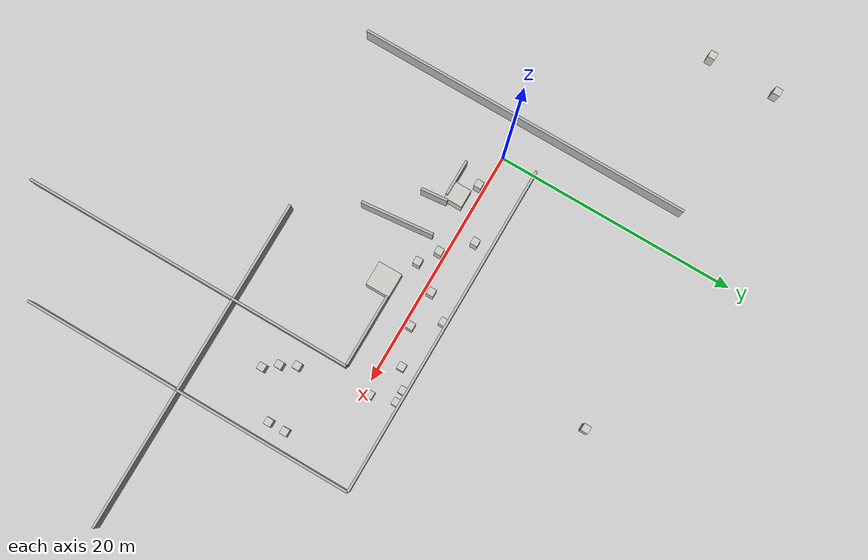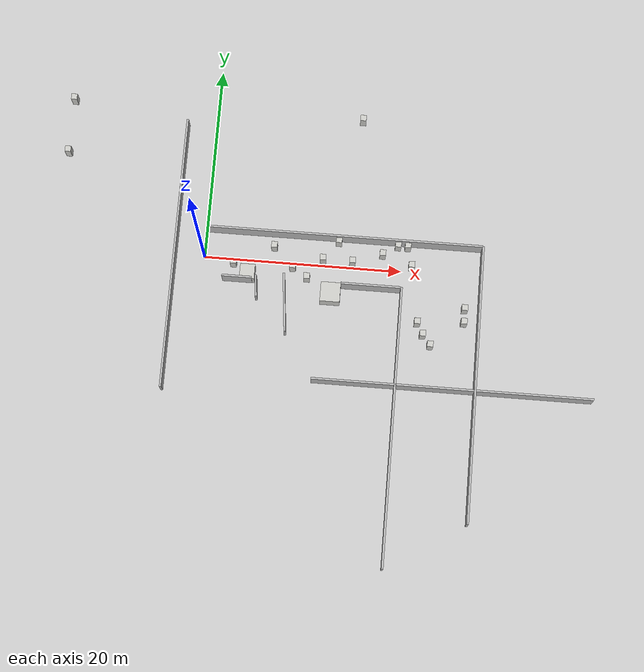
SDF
<sdf version="1.7">
 <world name="default">
  <light name="sun" type="directional">
   <pose>0 0 10 0 -0 0</pose>
   <diffuse>0.8 0.8 0.8 1</diffuse>
   <specular>0.2 0.2 0.2 1</specular>
   <attenuation>
    <range>1000</range>
    <constant>0.9</constant>
    <linear>0.01</linear>
    <quadratic>0.001</quadratic>
   </attenuation>
   <direction>-0.5 0.1 -0.9</direction>
   <spot><inner_angle>0</inner_angle><outer_angle>0</outer_angle><falloff>0</falloff></spot>
  </light>
  <model name="ground_plane">
   <static>1</static>
   <link name="link">
    <collision name="collision">
     <geometry><plane><normal>0 0 1</normal><size>100 100</size></plane></geometry>
     <surface>
      <contact><collide_bitmask>65535</collide_bitmask></contact>
      <friction><ode><mu>100</mu><mu2>50</mu2></ode></friction>
     </surface>
    </collision>
    <visual name="visual">
     <cast_shadows>0</cast_shadows>
     <geometry><plane><normal>0 0 1</normal><size>100 100</size></plane></geometry>
     <material>
      <script><uri>file://media/materials/scripts/gazebo.material</uri><name>Gazebo/Grey</name></script>
     </material>
    </visual>
   </link>
  </model>
  <gravity>0 0 -9.8</gravity>
  <magnetic_field>6e-06 2.3e-05 -4.2e-05</magnetic_field>
  <atmosphere type="adiabatic"/>
  <physics type="ode">
   <max_step_size>0.001</max_step_size>
   <real_time_factor>1</real_time_factor>
   <real_time_update_rate>1000</real_time_update_rate>
  </physics>
  <scene><ambient>0.4 0.4 0.4 1</ambient><background>0.7 0.7 0.7 1</background><shadows>1</shadows></scene>
  <spherical_coordinates>
   <surface_model>EARTH_WGS84</surface_model>
   <latitude_deg>0</latitude_deg>
   <longitude_deg>0</longitude_deg>
   <elevation>0</elevation>
   <heading_deg>0</heading_deg>
  </spherical_coordinates>
  <model name="left_wall">
   <static>1</static>
   <pose>14 2.8 1 0 -0 0</pose>
   <link name="link">
    <collision name="collision"><geometry><box><size>28 0.2 2</size></box></geometry></collision>
    <visual name="visual"><geometry><box><size>28 0.2 2</size></box></geometry></visual>
   </link>
  </model>
  <model name="right_wall_1">
   <static>1</static>
   <pose>3.5 -2.2 1 0 -0 0</pose>
   <link name="link">
    <collision name="collision"><geometry><box><size>3 0.2 2</size></box></geometry></collision>
    <visual name="visual"><geometry><box><size>3 0.2 2</size></box></geometry></visual>
   </link>
  </model>
  <model name="right_wall_2">
   <static>1</static>
   <pose>5.5 -3 1 0 -0 0.1</pose>
   <link name="link">
    <collision name="collision"><geometry><box><size>0.2 2.2 2</size></box></geometry></collision>
    <visual name="visual"><geometry><box><size>0.2 2.2 2</size></box></geometry></visual>
   </link>
  </model>
  <model name="right_wall_3">
   <static>1</static>
   <pose>8.5 -4.5 1 0 -0 0.1</pose>
   <link name="link">
    <collision name="collision"><geometry><box><size>0.2 6 2</size></box></geometry></collision>
    <visual name="visual"><geometry><box><size>0.2 6 2</size></box></geometry></visual>
   </link>
  </model>
  <model name="right_wall_4">
   <static>1</static>
   <pose>17 -2.1 1 0 -0 0</pose>
   <link name="link">
    <collision name="collision"><geometry><box><size>6 0.2 2</size></box></geometry></collision>
    <visual name="visual"><geometry><box><size>6 0.2 2</size></box></geometry></visual>
   </link>
  </model>
  <model name="back_wall">
   <static>1</static>
   <pose>-3 0 1 0 -0 0</pose>
   <link name="link">
    <collision name="collision"><geometry><box><size>0.2 28 2</size></box></geometry></collision>
    <visual name="visual"><geometry><box><size>0.2 28 2</size></box></geometry></visual>
   </link>
  </model>
  <model name="box_1_1_2">
   <pose>3.85 0.94 0 0 -0 0</pose>
   <link name="Wall_0">
    <collision name="Wall_0_Collision">
     <geometry><box><size>0.6 0.6 1.6</size></box></geometry>
     <pose>0 0 0.8 0 -0 0</pose>
    </collision>
    <visual name="Wall_0_Visual">
     <pose>0 0 0.8 0 -0 0</pose>
     <geometry><box><size>0.6 0.6 1.6</size></box></geometry>
     <material>
      <script><uri>file://media/materials/scripts/gazebo.material</uri><name>Gazebo/CeilingTiled</name></script>
      <ambient>0.921569 0.807843 0.615686 1</ambient>
     </material>
     <meta><layer>0</layer></meta>
    </visual>
    <pose>-0.85 -1.44 0 0 -0 0</pose>
   </link>
   <static>1</static>
  </model>
  <model name="box_1_1_2_1">
   <pose>7.85 2.94 0 0 -0 0</pose>
   <link name="Wall_0">
    <collision name="Wall_0_Collision">
     <geometry><box><size>0.6 0.6 1.6</size></box></geometry>
     <pose>0 0 0.8 0 -0 0</pose>
    </collision>
    <visual name="Wall_0_Visual">
     <pose>0 0 0.8 0 -0 0</pose>
     <geometry><box><size>0.6 0.6 1.6</size></box></geometry>
     <material>
      <script><uri>file://media/materials/scripts/gazebo.material</uri><name>Gazebo/CeilingTiled</name></script>
      <ambient>0.921569 0.807843 0.615686 1</ambient>
     </material>
     <meta><layer>0</layer></meta>
    </visual>
    <pose>-0.85 -1.44 0 0 -0 0</pose>
   </link>
   <static>1</static>
  </model>
  <model name="box_1_1_2_2">
   <pose>9.85 0.94 0 0 -0 0</pose>
   <link name="Wall_0">
    <collision name="Wall_0_Collision">
     <geometry><box><size>0.6 0.6 1.6</size></box></geometry>
     <pose>0 0 0.8 0 -0 0</pose>
    </collision>
    <visual name="Wall_0_Visual">
     <pose>0 0 0.8 0 -0 0</pose>
     <geometry><box><size>0.6 0.6 1.6</size></box></geometry>
     <material>
      <script><uri>file://media/materials/scripts/gazebo.material</uri><name>Gazebo/CeilingTiled</name></script>
      <ambient>0.921569 0.807843 0.615686 1</ambient>
     </material>
     <meta><layer>0</layer></meta>
    </visual>
    <pose>-0.85 -1.44 0 0 -0 0</pose>
   </link>
   <static>1</static>
  </model>
  <model name="box_1_1_2_3">
   <pose>12.85 2 0 0 -0 0</pose>
   <link name="Wall_0">
    <collision name="Wall_0_Collision">
     <geometry><box><size>0.6 0.6 1.6</size></box></geometry>
     <pose>0 0 0.8 0 -0 0</pose>
    </collision>
    <visual name="Wall_0_Visual">
     <pose>0 0 0.8 0 -0 0</pose>
     <geometry><box><size>0.6 0.6 1.6</size></box></geometry>
     <material>
      <script><uri>file://media/materials/scripts/gazebo.material</uri><name>Gazebo/CeilingTiled</name></script>
      <ambient>0.921569 0.807843 0.615686 1</ambient>
     </material>
     <meta><layer>0</layer></meta>
    </visual>
    <pose>-0.85 -1.44 0 0 -0 0</pose>
   </link>
   <static>1</static>
  </model>
  <model name="box_1_1_2_4">
   <pose>15.85 1.94 0 0 -0 0</pose>
   <link name="Wall_0">
    <collision name="Wall_0_Collision">
     <geometry><box><size>0.6 0.6 1.6</size></box></geometry>
     <pose>0 0 0.8 0 -0 0</pose>
    </collision>
    <visual name="Wall_0_Visual">
     <pose>0 0 0.8 0 -0 0</pose>
     <geometry><box><size>0.6 0.6 1.6</size></box></geometry>
     <material>
      <script><uri>file://media/materials/scripts/gazebo.material</uri><name>Gazebo/CeilingTiled</name></script>
      <ambient>0.921569 0.807843 0.615686 1</ambient>
     </material>
     <meta><layer>0</layer></meta>
    </visual>
    <pose>-0.85 -1.44 0 0 -0 0</pose>
   </link>
   <static>1</static>
  </model>
  <model name="box_1_1_2_5">
   <pose>18.85 2.94 0 0 -0 0</pose>
   <link name="Wall_0">
    <collision name="Wall_0_Collision">
     <geometry><box><size>0.6 0.6 1.6</size></box></geometry>
     <pose>0 0 0.8 0 -0 0</pose>
    </collision>
    <visual name="Wall_0_Visual">
     <pose>0 0 0.8 0 -0 0</pose>
     <geometry><box><size>0.6 0.6 1.6</size></box></geometry>
     <material>
      <script><uri>file://media/materials/scripts/gazebo.material</uri><name>Gazebo/CeilingTiled</name></script>
      <ambient>0.921569 0.807843 0.615686 1</ambient>
     </material>
     <meta><layer>0</layer></meta>
    </visual>
    <pose>-0.85 -1.44 0 0 -0 0</pose>
   </link>
   <static>1</static>
  </model>
  <model name="box_1_1_2_6">
   <pose>21.85 1.94 0 0 -0 0</pose>
   <link name="Wall_0">
    <collision name="Wall_0_Collision">
     <geometry><box><size>0.6 0.6 1.6</size></box></geometry>
     <pose>0 0 0.8 0 -0 0</pose>
    </collision>
    <visual name="Wall_0_Visual">
     <pose>0 0 0.8 0 -0 0</pose>
     <geometry><box><size>0.6 0.6 1.6</size></box></geometry>
     <material>
      <script><uri>file://media/materials/scripts/gazebo.material</uri><name>Gazebo/CeilingTiled</name></script>
      <ambient>0.921569 0.807843 0.615686 1</ambient>
     </material>
     <meta><layer>0</layer></meta>
    </visual>
    <pose>-0.85 -1.44 0 0 -0 0</pose>
   </link>
   <static>1</static>
  </model>
  <model name="box_1_1_2_7">
   <pose>13.85 -1.56 0 0 -0 0</pose>
   <link name="Wall_0">
    <collision name="Wall_0_Collision">
     <geometry><box><size>2 2 1.6</size></box></geometry>
     <pose>0 0 0.8 0 -0 0</pose>
    </collision>
    <visual name="Wall_0_Visual">
     <pose>0 0 0.8 0 -0 0</pose>
     <geometry><box><size>2 2 1.6</size></box></geometry>
     <material>
      <script><uri>file://media/materials/scripts/gazebo.material</uri><name>Gazebo/CeilingTiled</name></script>
      <ambient>0.921569 0.807843 0.615686 1</ambient>
     </material>
     <meta><layer>0</layer></meta>
    </visual>
    <pose>-0.85 -1.44 0 0 -0 0</pose>
   </link>
   <static>1</static>
  </model>
  <model name="box_1_1_2_8">
   <pose>14.35 3.94 0 0 -0 0</pose>
   <link name="Wall_0">
    <collision name="Wall_0_Collision">
     <geometry><box><size>0.6 0.6 1.6</size></box></geometry>
     <pose>0 0 0.8 0 -0 0</pose>
    </collision>
    <visual name="Wall_0_Visual">
     <pose>0 0 0.8 0 -0 0</pose>
     <geometry><box><size>0.6 0.6 1.6</size></box></geometry>
     <material>
      <script><uri>file://media/materials/scripts/gazebo.material</uri><name>Gazebo/CeilingTiled</name></script>
      <ambient>0.921569 0.807843 0.615686 1</ambient>
     </material>
     <meta><layer>0</layer></meta>
    </visual>
    <pose>-0.85 -1.44 0 0 -0 0</pose>
   </link>
   <static>1</static>
  </model>
  <model name="box_1_1_2_9">
   <pose>20.35 3.94 0 0 -0 0</pose>
   <link name="Wall_0">
    <collision name="Wall_0_Collision">
     <geometry><box><size>0.6 0.6 1.6</size></box></geometry>
     <pose>0 0 0.8 0 -0 0</pose>
    </collision>
    <visual name="Wall_0_Visual">
     <pose>0 0 0.8 0 -0 0</pose>
     <geometry><box><size>0.6 0.6 1.6</size></box></geometry>
     <material>
      <script><uri>file://media/materials/scripts/gazebo.material</uri><name>Gazebo/CeilingTiled</name></script>
      <ambient>0.921569 0.807843 0.615686 1</ambient>
     </material>
     <meta><layer>0</layer></meta>
    </visual>
    <pose>-0.85 -1.44 0 0 -0 0</pose>
   </link>
   <static>1</static>
  </model>
  <model name="box_1_1_2_10">
   <pose>21.35 3.94 0 0 -0 0</pose>
   <link name="Wall_0">
    <collision name="Wall_0_Collision">
     <geometry><box><size>0.6 0.6 1.6</size></box></geometry>
     <pose>0 0 0.8 0 -0 0</pose>
    </collision>
    <visual name="Wall_0_Visual">
     <pose>0 0 0.8 0 -0 0</pose>
     <geometry><box><size>0.6 0.6 1.6</size></box></geometry>
     <material>
      <script><uri>file://media/materials/scripts/gazebo.material</uri><name>Gazebo/CeilingTiled</name></script>
      <ambient>0.921569 0.807843 0.615686 1</ambient>
     </material>
     <meta><layer>0</layer></meta>
    </visual>
    <pose>-0.85 -1.44 0 0 -0 0</pose>
   </link>
   <static>1</static>
  </model>
  <model name="box_1_1_2_11">
   <pose>5.35 -0.06 0 0 -0 0</pose>
   <link name="Wall_0">
    <collision name="Wall_0_Collision">
     <geometry><box><size>1.5 1.5 1.6</size></box></geometry>
     <pose>0 0 0.8 0 -0 0</pose>
    </collision>
    <visual name="Wall_0_Visual">
     <pose>0 0 0.8 0 -0 0</pose>
     <geometry><box><size>1.5 1.5 1.6</size></box></geometry>
     <material>
      <script><uri>file://media/materials/scripts/gazebo.material</uri><name>Gazebo/CeilingTiled</name></script>
      <ambient>0.921569 0.807843 0.615686 1</ambient>
     </material>
     <meta><layer>0</layer></meta>
    </visual>
    <pose>-0.85 -1.44 0 0 -0 0</pose>
   </link>
   <static>1</static>
  </model>
  <model name="box_1_1_2_12">
   <pose>11.35 -0.06 0 0 -0 0</pose>
   <link name="Wall_0">
    <collision name="Wall_0_Collision">
     <geometry><box><size>0.6 0.6 1.6</size></box></geometry>
     <pose>0 0 0.8 0 -0 0</pose>
    </collision>
    <visual name="Wall_0_Visual">
     <pose>0 0 0.8 0 -0 0</pose>
     <geometry><box><size>0.6 0.6 1.6</size></box></geometry>
     <material>
      <script><uri>file://media/materials/scripts/gazebo.material</uri><name>Gazebo/CeilingTiled</name></script>
      <ambient>0.921569 0.807843 0.615686 1</ambient>
     </material>
     <meta><layer>0</layer></meta>
    </visual>
    <pose>-0.85 -1.44 0 0 -0 0</pose>
   </link>
   <static>1</static>
  </model>
  <model name="box_1_1_2_13">
   <pose>-14.15 11.44 0 0 -0 0</pose>
   <link name="Wall_0">
    <collision name="Wall_0_Collision">
     <geometry><box><size>0.6 0.6 1.6</size></box></geometry>
     <pose>0 0 0.8 0 -0 0</pose>
    </collision>
    <visual name="Wall_0_Visual">
     <pose>0 0 0.8 0 -0 0</pose>
     <geometry><box><size>0.6 0.6 1.6</size></box></geometry>
     <material>
      <script><uri>file://media/materials/scripts/gazebo.material</uri><name>Gazebo/CeilingTiled</name></script>
      <ambient>0.921569 0.807843 0.615686 1</ambient>
     </material>
     <meta><layer>0</layer></meta>
    </visual>
    <pose>-0.85 -1.44 0 0 -0 0</pose>
   </link>
   <static>1</static>
  </model>
  <model name="box_1_1_2_14">
   <pose>-14.15 17.14 0 0 -0 0</pose>
   <link name="Wall_0">
    <collision name="Wall_0_Collision">
     <geometry><box><size>0.6 0.6 1.6</size></box></geometry>
     <pose>0 0 0.8 0 -0 0</pose>
    </collision>
    <visual name="Wall_0_Visual">
     <pose>0 0 0.8 0 -0 0</pose>
     <geometry><box><size>0.6 0.6 1.6</size></box></geometry>
     <material>
      <script><uri>file://media/materials/scripts/gazebo.material</uri><name>Gazebo/CeilingTiled</name></script>
      <ambient>0.921569 0.807843 0.615686 1</ambient>
     </material>
     <meta><layer>0</layer></meta>
    </visual>
    <pose>-0.85 -1.44 0 0 -0 0</pose>
   </link>
   <static>1</static>
  </model>
  <model name="box_1_1_2_15">
   <pose>15.85 17.14 0 0 -0 0</pose>
   <link name="Wall_0">
    <collision name="Wall_0_Collision">
     <geometry><box><size>0.6 0.6 1.6</size></box></geometry>
     <pose>0 0 0.8 0 -0 0</pose>
    </collision>
    <visual name="Wall_0_Visual">
     <pose>0 0 0.8 0 -0 0</pose>
     <geometry><box><size>0.6 0.6 1.6</size></box></geometry>
     <material>
      <script><uri>file://media/materials/scripts/gazebo.material</uri><name>Gazebo/CeilingTiled</name></script>
      <ambient>0.921569 0.807843 0.615686 1</ambient>
     </material>
     <meta><layer>0</layer></meta>
    </visual>
    <pose>-0.85 -1.44 0 0 -0 0</pose>
   </link>
   <static>1</static>
  </model>
  <model name="back_wall_clone">
   <static>1</static>
   <pose>20.109 -16.0858 1 0 -0 0</pose>
   <link name="link">
    <collision name="collision"><geometry><box><size>0.2 28 2</size></box></geometry></collision>
    <visual name="visual"><geometry><box><size>0.2 28 2</size></box></geometry></visual>
   </link>
  </model>
  <model name="back_wall_clone_0">
   <static>1</static>
   <pose>28.0545 -11.1975 1 0 -0 0</pose>
   <link name="link">
    <collision name="collision"><geometry><box><size>0.2 28 2</size></box></geometry></collision>
    <visual name="visual"><geometry><box><size>0.2 28 2</size></box></geometry></visual>
   </link>
  </model>
  <model name="back_wall_clone_1_clone">
   <static>1</static>
   <pose>25.7647 -12 1 0 -0 1.5717</pose>
   <link name="link">
    <collision name="collision"><geometry><box><size>0.2 28 2</size></box></geometry></collision>
    <visual name="visual"><geometry><box><size>0.2 28 2</size></box></geometry></visual>
   </link>
  </model>
  <model name="box_1_1_2_3_clone">
   <pose>22.7754 -3.84178 0 0 -0 0</pose>
   <link name="Wall_0">
    <collision name="Wall_0_Collision">
     <geometry><box><size>0.6 0.6 1.6</size></box></geometry>
     <pose>0 0 0.8 0 -0 0</pose>
    </collision>
    <visual name="Wall_0_Visual">
     <pose>0 0 0.8 0 -0 0</pose>
     <geometry><box><size>0.6 0.6 1.6</size></box></geometry>
     <material>
      <script><uri>file://media/materials/scripts/gazebo.material</uri><name>Gazebo/CeilingTiled</name></script>
      <ambient>0.921569 0.807843 0.615686 1</ambient>
     </material>
     <meta><layer>0</layer></meta>
    </visual>
    <pose>-0.85 -1.44 0 0 -0 0</pose>
   </link>
   <static>1</static>
  </model>
  <model name="box_1_1_2_3_clone_0">
   <pose>24.1967 -6.09327 0 0 -0 0</pose>
   <link name="Wall_0">
    <collision name="Wall_0_Collision">
     <geometry><box><size>0.6 0.6 1.6</size></box></geometry>
     <pose>0 0 0.8 0 -0 0</pose>
    </collision>
    <visual name="Wall_0_Visual">
     <pose>0 0 0.8 0 -0 0</pose>
     <geometry><box><size>0.6 0.6 1.6</size></box></geometry>
     <material>
      <script><uri>file://media/materials/scripts/gazebo.material</uri><name>Gazebo/CeilingTiled</name></script>
      <ambient>0.921569 0.807843 0.615686 1</ambient>
     </material>
     <meta><layer>0</layer></meta>
    </visual>
    <pose>-0.85 -1.44 0 0 -0 0</pose>
   </link>
   <static>1</static>
  </model>
  <model name="box_1_1_2_3_clone_1">
   <pose>27.4414 -2.11339 0 0 -0 0</pose>
   <link name="Wall_0">
    <collision name="Wall_0_Collision">
     <geometry><box><size>0.6 0.6 1.6</size></box></geometry>
     <pose>0 0 0.8 0 -0 0</pose>
    </collision>
    <visual name="Wall_0_Visual">
     <pose>0 0 0.8 0 -0 0</pose>
     <geometry><box><size>0.6 0.6 1.6</size></box></geometry>
     <material>
      <script><uri>file://media/materials/scripts/gazebo.material</uri><name>Gazebo/CeilingTiled</name></script>
      <ambient>0.921569 0.807843 0.615686 1</ambient>
     </material>
     <meta><layer>0</layer></meta>
    </visual>
    <pose>-0.85 -1.44 0 0 -0 0</pose>
   </link>
   <static>1</static>
  </model>
  <model name="box_1_1_2_3_clone_2">
   <pose>27.4434 -3.50699 0 0 -0 0</pose>
   <link name="Wall_0">
    <collision name="Wall_0_Collision">
     <geometry><box><size>0.6 0.6 1.6</size></box></geometry>
     <pose>0 0 0.8 0 -0 0</pose>
    </collision>
    <visual name="Wall_0_Visual">
     <pose>0 0 0.8 0 -0 0</pose>
     <geometry><box><size>0.6 0.6 1.6</size></box></geometry>
     <material>
      <script><uri>file://media/materials/scripts/gazebo.material</uri><name>Gazebo/CeilingTiled</name></script>
      <ambient>0.921569 0.807843 0.615686 1</ambient>
     </material>
     <meta><layer>0</layer></meta>
    </visual>
    <pose>-0.85 -1.44 0 0 -0 0</pose>
   </link>
   <static>1</static>
  </model>
  <model name="box_1_1_2_3_clone_3">
   <pose>23.3845 -5.05171 0 0 -0 0</pose>
   <link name="Wall_0">
    <collision name="Wall_0_Collision">
     <geometry><box><size>0.6 0.6 1.6</size></box></geometry>
     <pose>0 0 0.8 0 -0 0</pose>
    </collision>
    <visual name="Wall_0_Visual">
     <pose>0 0 0.8 0 -0 0</pose>
     <geometry><box><size>0.6 0.6 1.6</size></box></geometry>
     <material>
      <script><uri>file://media/materials/scripts/gazebo.material</uri><name>Gazebo/CeilingTiled</name></script>
      <ambient>0.921569 0.807843 0.615686 1</ambient>
     </material>
     <meta><layer>0</layer></meta>
    </visual>
    <pose>-0.85 -1.44 0 0 -0 0</pose>
   </link>
   <static>1</static>
  </model>
 </world>
</sdf>
